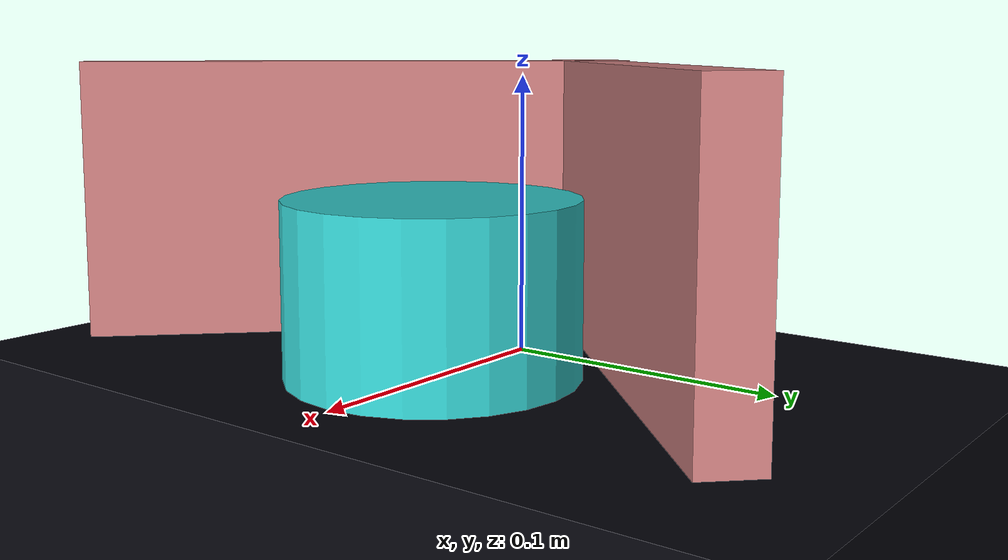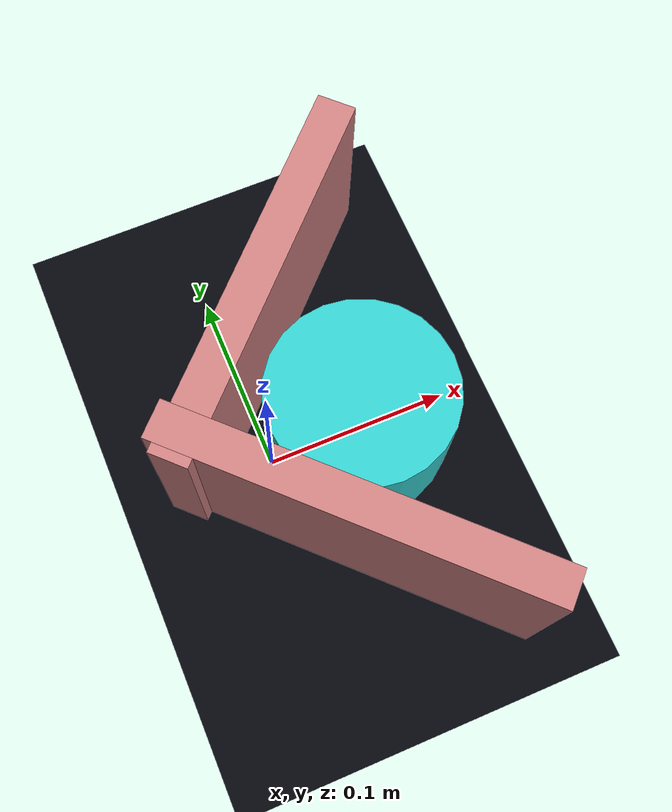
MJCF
<?xml version="1.0" encoding="utf-8" ?>
<mujoco>
    <option timestep="0.002" viscosity="0.001">
        <flag multiccd="enable"/>
    </option>
    <default>
        <geom friction="0.04 0.001 0.0001"/>
    </default>
    <worldbody>
        <body name="floor" pos="0.5 0 -0.1">
            <geom type="box" name="floor" size="1 1 0.1" rgba="0.02 0.02 0.05 1"/>
        </body>
        <body name="robot" pos="0.02 0.0 0.055">
            <geom type="box" name="top_finger" pos="0 0.06 0" euler="0 0 45" size="0.1 0.01 0.05" rgba="0.8 0.5 0.5 1"
                  friction="0.04 0.001 0.0001"/>
            <geom type="box" name="bottom_finger" pos="0 -0.06 0" euler="0 0 -45" size="0.1 0.01 0.05"
                  rgba="0.8 0.5 0.5 1" friction="0.04 0.001 0.0001"/>
            <joint type="slide" name="x" pos="0 0 0" axis="1 0 0" damping="2"/>
            <joint type="slide" name="y" pos="0 0 0" axis="0 1 0" damping="2"/>
            <joint type="hinge" name="z" pos="0 0 0" axis="0 0 1" damping="2"/>
        </body>
        <body name="object" pos="0.05 0 0.031">
            <geom type="cylinder" name="base" size="0.05 0.03" rgba="0.2 0.8 0.8 1" friction="0.001 0.001 0.0001"/>
            <joint type="free" damping="0.01"/>
        </body>
    </worldbody>
    <actuator>
        <velocity name="x" joint="x" kv="50"/>
        <velocity name="y" joint="y" kv="50"/>
        <velocity name="z" joint="z" kv="2"/>
    </actuator>
</mujoco>
